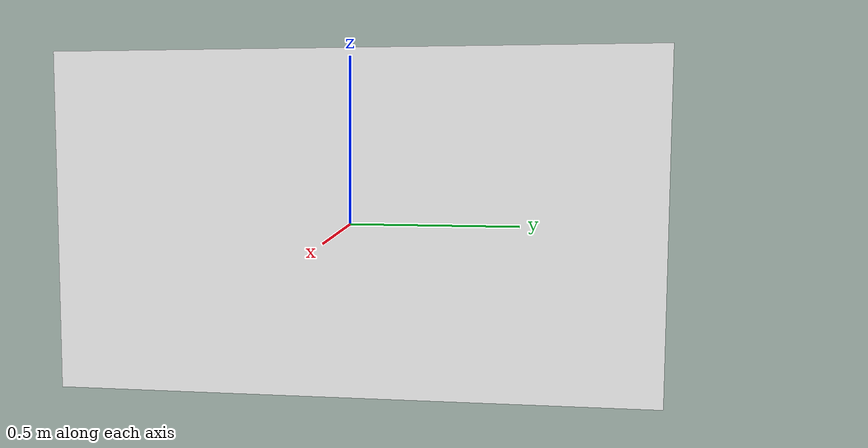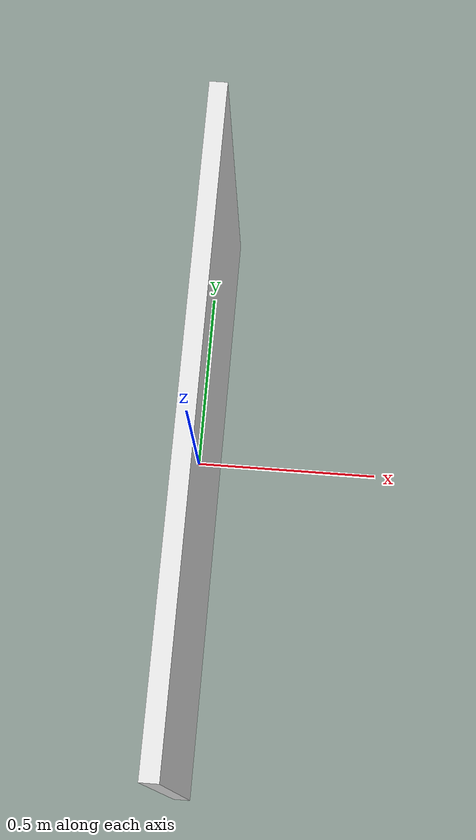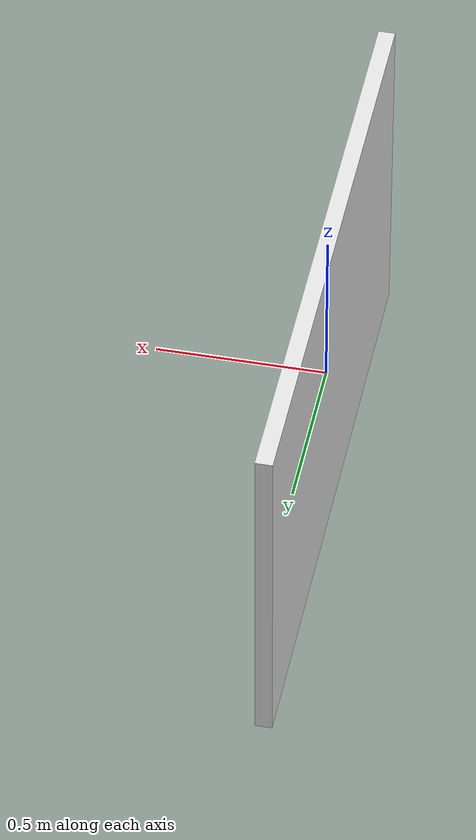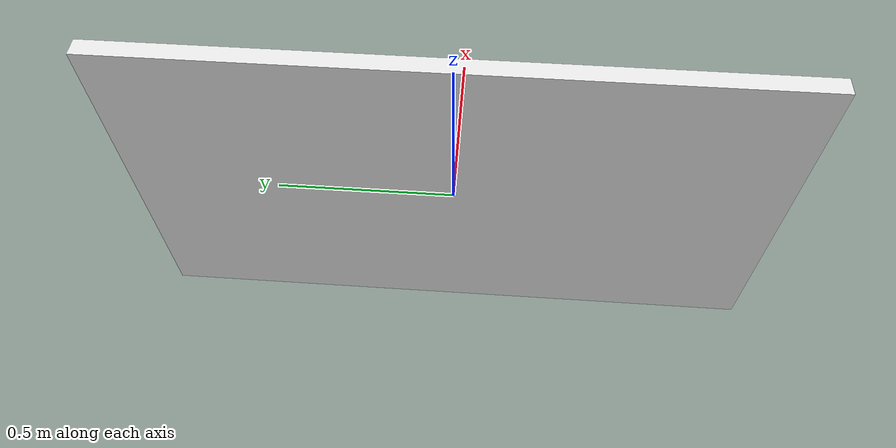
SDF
<?xml version="1.0"?>
<sdf version='1.4'>
  <model name='tv_65in_emissive'>
    <link name="link">
      <visual name="visual">
        <geometry>
          <box>
            <size>0.05 1.827 1.046</size>
          </box>
        </geometry>
        <material>
          <pbr>
            <metal>
              <albedo_map>model://tv_65in_emissive/material/textures/Napoli.jpeg</albedo_map>
            </metal>
          </pbr>
          <ambient>0.9 0.9 0.9 1</ambient>
          <diffuse>0.9 0.9 0.9 1</diffuse>
          <specular>0.8 0.8 0.8 1</specular>
        </material>
      </visual>
    </link>
    <static>1</static>
    <allow_auto_disable>1</allow_auto_disable>
  </model>
</sdf>
